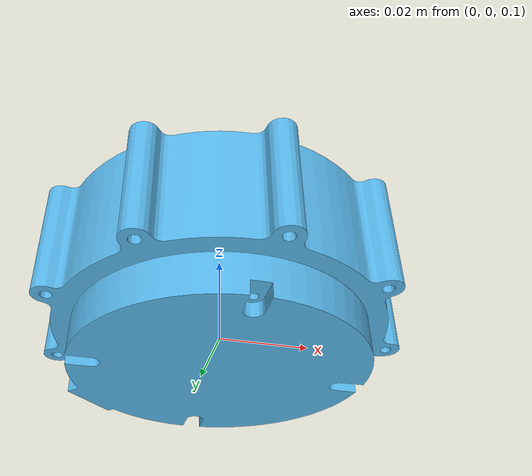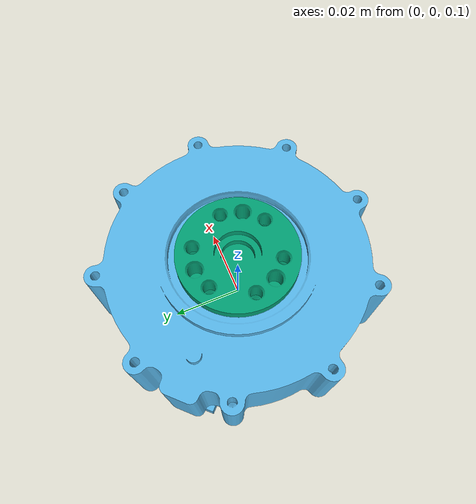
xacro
<?xml version="1.0"?>
<!--
MIT License
Copyright (c) 2024 Naoki Takahashi
-->
<robot xmlns:xacro="http://www.ros.org/wiki/xacro" name="cybergear_servo">
  <xacro:include filename="$(find cybergear_servo_description)/urdf/cybergear_servo.xacro"/>
  <link name="base_link">
  </link>
  <xacro:cybergear_servo name="demo" parent="base_link">
    <origin rpy="0 0 0" xyz="0 0 0.1"/>
  </xacro:cybergear_servo>
</robot>

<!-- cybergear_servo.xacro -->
<!--
MIT License
Copyright (c) 2024 Naoki Takahashi
-->
<robot xmlns:xacro="http://www.ros.org/wiki/xacro">
  <xacro:macro name="cybergear_servo" params="name parent *origin">
    <joint name="${name}_base_joint" type="fixed">
      <xacro:insert_block name="origin"/>
      <parent link="${parent}"/>
      <child link="${name}_cybergear_link"/>
    </joint>
    <link name="${name}_cybergear_link">
      <visual>
        <geometry>
          <mesh filename="package://cybergear_servo_description/meshes/cybergear_body.stl" scale="0.001 0.001 0.001"/>
        </geometry>
      </visual>
      <collision>
        <origin rpy="0 0 0" xyz="0 0 0.008"/>
        <geometry>
          <cylinder length="0.035" radius="0.042"/>
        </geometry>
      </collision>
    </link>
    <joint name="${name}_table_joint" type="revolute">
      <origin rpy="0 0 0" xyz="0 0 0.028"/>
      <parent link="${name}_cybergear_link"/>
      <child link="${name}_cybergear_table_link"/>
      <axis xyz="0 0 1"/>
      <limit effort="12" velocity="30" lower="-12.565" upper="12.565"/>
    </joint>
    <link name="${name}_cybergear_table_link">
      <visual>
        <origin rpy="0 0 0" xyz="0 0 -0.028"/>
        <geometry>
          <mesh filename="package://cybergear_servo_description/meshes/cybergear_table.stl" scale="0.001 0.001 0.001"/>
        </geometry>
      </visual>
      <collision>
        <origin rpy="0 0 0" xyz="0 0 -0.005"/>
        <geometry>
          <cylinder length="0.01" radius="0.016"/>
        </geometry>
      </collision>
    </link>
  </xacro:macro>
</robot>
